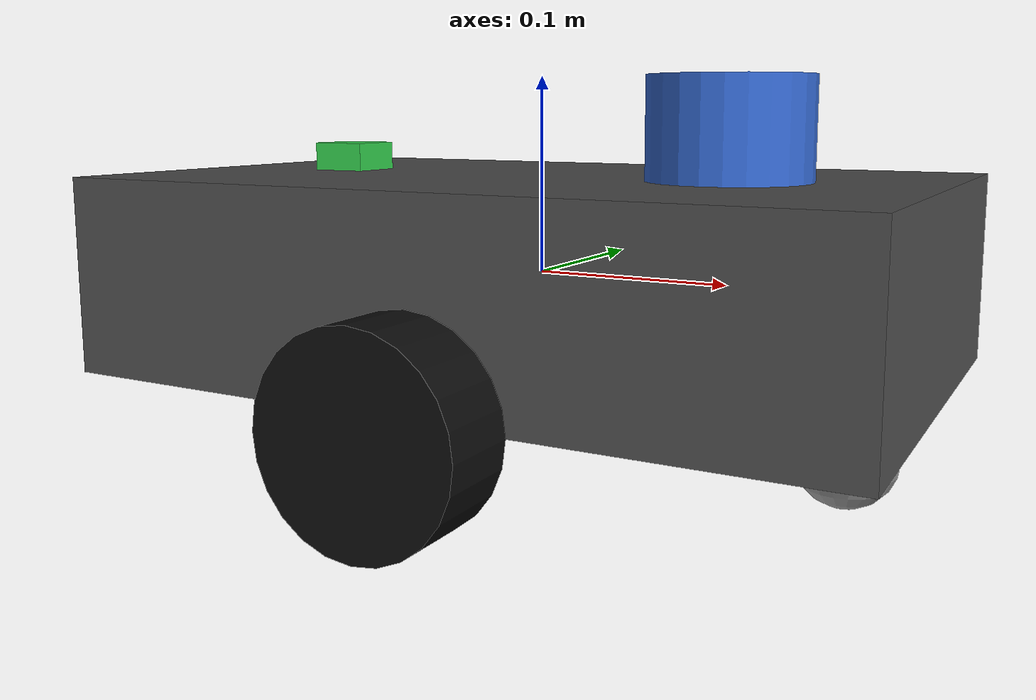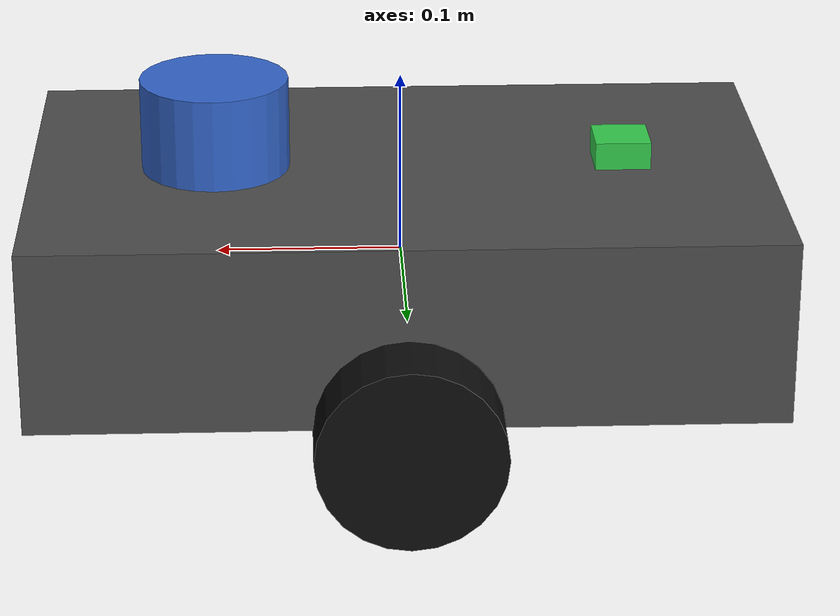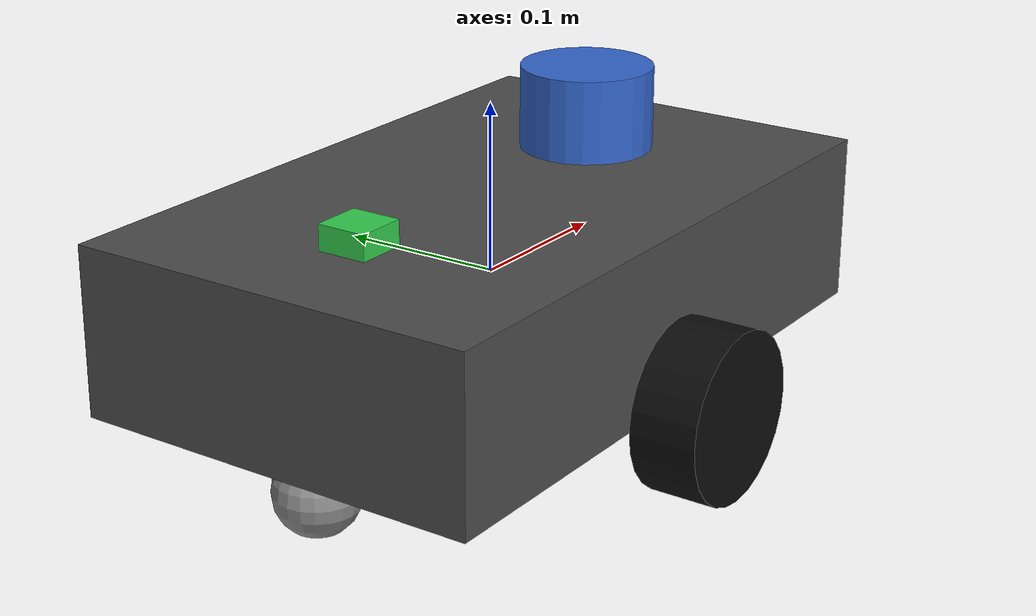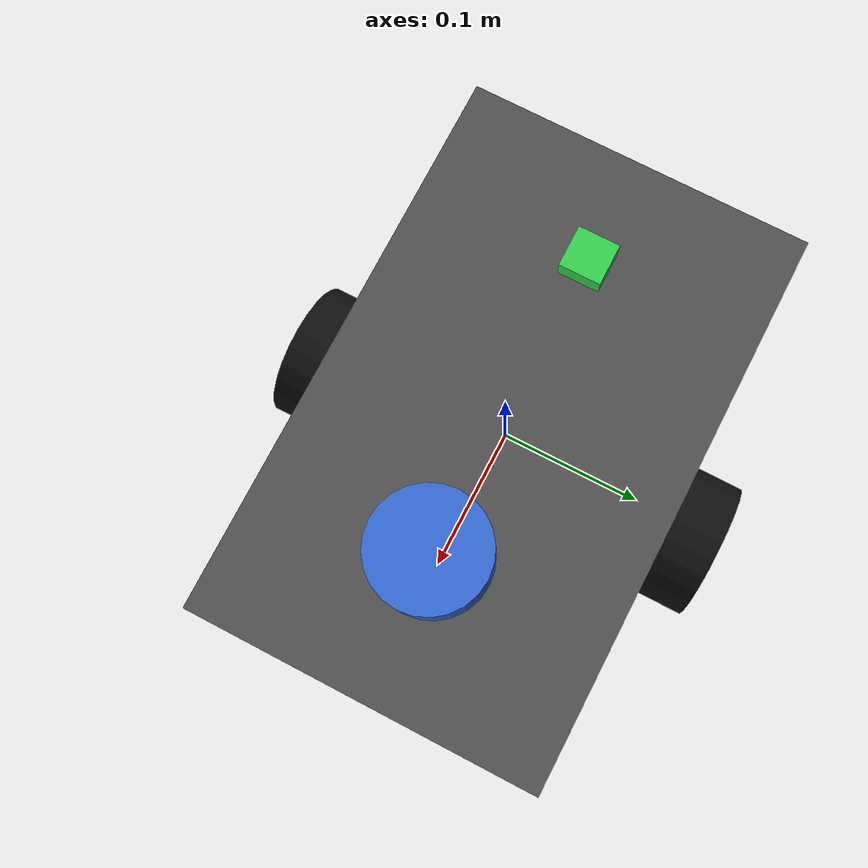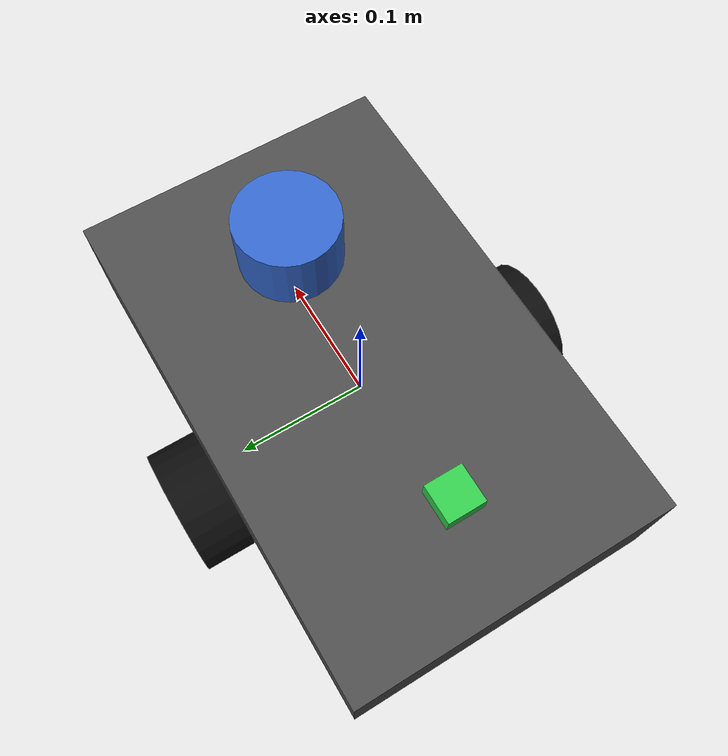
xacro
<?xml version="1.0"?>
<robot name="slam_robot" xmlns:xacro="http://www.ros.org/wiki/xacro">

  <!-- ================= Properties ================= -->
  <xacro:property name="body_len"  value="0.40"/>
  <xacro:property name="body_wid"  value="0.25"/>
  <xacro:property name="body_hgt"  value="0.10"/>
  <xacro:property name="body_mass" value="4.0"/>

  <xacro:property name="wheel_radius" value="0.05"/>
  <xacro:property name="wheel_width"  value="0.04"/>
  <xacro:property name="wheel_mass"   value="0.78"/>

  <xacro:property name="caster_radius" value="0.025"/>
  <xacro:property name="caster_mass"   value="0.15"/>

  <xacro:property name="lidar_mass" value="0.20"/>
  <xacro:property name="imu_mass"   value="0.05"/>

  <xacro:property name="wheel_separation" value="${body_wid + wheel_width}"/>

  <!-- ================= Base ================= -->
  <link name="base_link">
    <visual>
      <origin xyz="0 0 0" rpy="0 0 0"/>
      <geometry>
        <box size="${body_len} ${body_wid} ${body_hgt}"/>
      </geometry>
      <material name="dark_grey">
        <color rgba="0.3 0.3 0.3 1.0"/>
      </material>
    </visual>
    <collision>
      <origin xyz="0 0 0" rpy="0 0 0"/>
      <geometry>
        <box size="${body_len} ${body_wid} ${body_hgt}"/>
      </geometry>
    </collision>
    <inertial>
      <origin xyz="0 0 0" rpy="0 0 0"/>
      <mass value="${body_mass}"/>
      <inertia ixx="0.024167" ixy="0.0" ixz="0.0"
               iyy="0.056667" iyz="0.0"
               izz="0.074167"/>
    </inertial>
  </link>

  <!-- ================= Drive wheels (Center Axle, True Diff Drive) ================= -->
  <xacro:macro name="drive_wheel" params="prefix y">
    <link name="${prefix}_wheel">
      <visual>
        <origin xyz="0 0 0" rpy="1.5708 0 0"/>
        <geometry>
          <cylinder radius="${wheel_radius}" length="${wheel_width}"/>
        </geometry>
        <material name="black">
          <color rgba="0.05 0.05 0.05 1.0"/>
        </material>
      </visual>
      <collision>
        <origin xyz="0 0 0" rpy="1.5708 0 0"/>
        <geometry>
          <cylinder radius="${wheel_radius}" length="${wheel_width}"/>
        </geometry>
      </collision>
      <inertial>
        <origin xyz="0 0 0" rpy="1.5708 0 0"/>
        <mass value="${wheel_mass}"/>
        <inertia ixx="0.000340" ixy="0.0" ixz="0.0"
                 iyy="0.000610" iyz="0.0"
                 izz="0.000610"/>
      </inertial>
    </link>
    <joint name="${prefix}_wheel_joint" type="revolute">
      <parent link="base_link"/>
      <child link="${prefix}_wheel"/>
      <origin xyz="0.0 ${y} -${wheel_radius}" rpy="0 0 0"/>
      <axis xyz="0 1 0"/>
      <limit lower="-1e+16" upper="1e+16" effort="30" velocity="10"/>
      <dynamics damping="0.01" friction="0.02"/>
    </joint>
  </xacro:macro>

  <xacro:drive_wheel prefix="left"  y="${body_wid / 2 + wheel_width / 2}"/>
  <xacro:drive_wheel prefix="right" y="${-body_wid / 2 - wheel_width / 2}"/>

  <!-- ================= Dual Support Casters (Front + Rear = 4 Contact Points, Zero Tilt) ================= -->
  <xacro:macro name="caster" params="prefix x">
    <link name="${prefix}_caster_link">
      <visual>
        <origin xyz="0 0 0" rpy="0 0 0"/>
        <geometry>
          <sphere radius="${caster_radius}"/>
        </geometry>
        <material name="grey">
          <color rgba="0.55 0.55 0.55 1.0"/>
        </material>
      </visual>
      <collision>
        <origin xyz="0 0 0" rpy="0 0 0"/>
        <geometry>
          <sphere radius="${caster_radius}"/>
        </geometry>
      </collision>
      <inertial>
        <origin xyz="0 0 0" rpy="0 0 0"/>
        <mass value="${caster_mass}"/>
        <inertia ixx="0.000019" ixy="0.0" ixz="0.0"
                 iyy="0.000019" iyz="0.0"
                 izz="0.000019"/>
      </inertial>
    </link>
    <joint name="${prefix}_caster_joint" type="fixed">
      <parent link="base_link"/>
      <child link="${prefix}_caster_link"/>
      <origin xyz="${x} 0 ${caster_radius - (2 * wheel_radius)}" rpy="0 0 0"/>
    </joint>
  </xacro:macro>

  <xacro:caster prefix="front" x="0.16"/>
  <xacro:caster prefix="rear"  x="-0.16"/>

  <!-- ================= Lidar ================= -->
  <link name="lidar_link">
    <visual>
      <origin xyz="0 0 0" rpy="0 0 0"/>
      <geometry>
        <cylinder radius="0.04" length="0.05"/>
      </geometry>
      <material name="blue">
        <color rgba="0.2 0.4 0.8 1.0"/>
      </material>
    </visual>
    <collision>
      <origin xyz="0 0 0" rpy="0 0 0"/>
      <geometry>
        <cylinder radius="0.04" length="0.05"/>
      </geometry>
    </collision>
    <inertial>
      <origin xyz="0 0 0" rpy="0 0 0"/>
      <mass value="${lidar_mass}"/>
      <inertia ixx="0.000175" ixy="0.0" ixz="0.0"
               iyy="0.000175" iyz="0.0"
               izz="0.000160"/>
    </inertial>
  </link>
  <joint name="lidar_joint" type="fixed">
    <parent link="base_link"/>
    <child link="lidar_link"/>
    <origin xyz="0.10 0 ${body_hgt / 2 + 0.025}" rpy="0 0 0"/>
  </joint>

  <gazebo reference="lidar_link">
    <sensor name="gpu_lidar" type="gpu_lidar">
      <pose relative_to="lidar_link">0 0 0 0 0 0</pose>
      <topic>/scan</topic>
      <update_rate>10</update_rate>
      <gz_frame_id>lidar_link</gz_frame_id>
      <lidar>
        <scan>
          <horizontal>
            <samples>360</samples>
            <resolution>1</resolution>
            <min_angle>-3.14159</min_angle>
            <max_angle>3.14159</max_angle>
          </horizontal>
        </scan>
        <range>
          <min>0.12</min>
          <max>10.0</max>
          <resolution>0.01</resolution>
        </range>
        <noise>
          <type>gaussian</type>
          <mean>0.0</mean>
          <stddev>0.01</stddev>
        </noise>
      </lidar>
      <always_on>true</always_on>
      <visualize>true</visualize>
    </sensor>
  </gazebo>

  <!-- ================= IMU ================= -->
  <link name="imu_link">
    <visual>
      <origin xyz="0 0 0" rpy="0 0 0"/>
      <geometry>
        <box size="0.03 0.03 0.015"/>
      </geometry>
      <material name="green">
        <color rgba="0.2 0.8 0.3 1.0"/>
      </material>
    </visual>
    <inertial>
      <origin xyz="0 0 0" rpy="0 0 0"/>
      <mass value="${imu_mass}"/>
      <inertia ixx="0.0000071" ixy="0.0" ixz="0.0"
               iyy="0.0000071" iyz="0.0"
               izz="0.0000071"/>
    </inertial>
  </link>
  <joint name="imu_joint" type="fixed">
    <parent link="base_link"/>
    <child link="imu_link"/>
    <origin xyz="-0.12 0 ${body_hgt / 2 + 0.0075}" rpy="0 0 0"/>
  </joint>

  <gazebo reference="imu_link">
    <sensor name="imu_sensor" type="imu">
      <pose relative_to="imu_link">0 0 0 0 0 0</pose>
      <topic>/imu</topic>
      <update_rate>50</update_rate>
      <gz_frame_id>imu_link</gz_frame_id>
      <always_on>true</always_on>
    </sensor>
  </gazebo>

  <!-- ================= Collision coloring & Friction ================= -->
  <gazebo reference="base_link">
    <material>Gazebo/DarkGrey</material>
  </gazebo>
  <gazebo reference="left_wheel">
    <material>Gazebo/Black</material>
    <mu1>1.5</mu1>
    <mu2>1.5</mu2>
  </gazebo>
  <gazebo reference="right_wheel">
    <material>Gazebo/Black</material>
    <mu1>1.5</mu1>
    <mu2>1.5</mu2>
  </gazebo>
  <gazebo reference="front_caster_link">
    <material>Gazebo/Grey</material>
    <mu1>0.0001</mu1>
    <mu2>0.0001</mu2>
  </gazebo>
  <gazebo reference="rear_caster_link">
    <material>Gazebo/Grey</material>
    <mu1>0.0001</mu1>
    <mu2>0.0001</mu2>
  </gazebo>

  <!-- ================= Gazebo plugins ================= -->
  <gazebo>
    <plugin filename="ignition-gazebo-diff-drive-system" name="ignition::gazebo::systems::DiffDrive">
      <topic>/cmd_vel</topic>
      <left_joint>left_wheel_joint</left_joint>
      <right_joint>right_wheel_joint</right_joint>
      <wheel_separation>${wheel_separation}</wheel_separation>
      <wheel_radius>${wheel_radius}</wheel_radius>
      <odom_publish_frequency>50</odom_publish_frequency>
      <odom_topic>odom</odom_topic>
      <frame_id>odom</frame_id>
      <child_frame_id>base_link</child_frame_id>
      <max_linear_acceleration>0.5</max_linear_acceleration>
      <max_angular_acceleration>0.8</max_angular_acceleration>
      <odom_only_twist>true</odom_only_twist>
      <tf_topic>/tf</tf_topic>
      <publish_tf>true</publish_tf>
      <update_rate>50</update_rate>
      <min_linear_velocity>-0.4</min_linear_velocity>
      <max_linear_velocity>0.4</max_linear_velocity>
      <min_angular_velocity>-1.0</min_angular_velocity>
      <max_angular_velocity>1.0</max_angular_velocity>
    </plugin>

    <plugin filename="ignition-gazebo-joint-state-publisher-system" name="ignition::gazebo::systems::JointStatePublisher">
      <joint_name>left_wheel_joint</joint_name>
      <joint_name>right_wheel_joint</joint_name>
      <topic>/joint_states</topic>
      <update_rate>50</update_rate>
    </plugin>
  </gazebo>

</robot>
